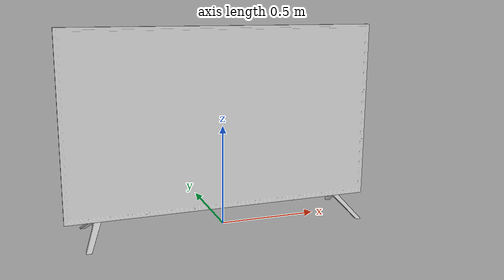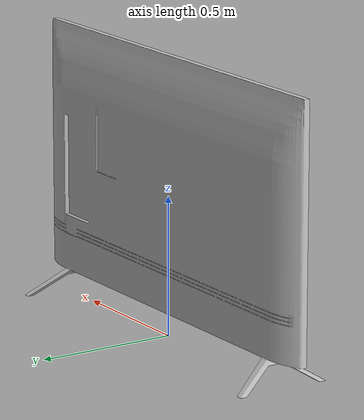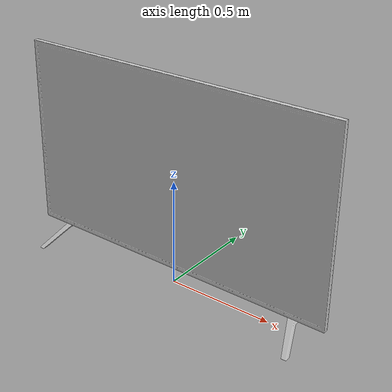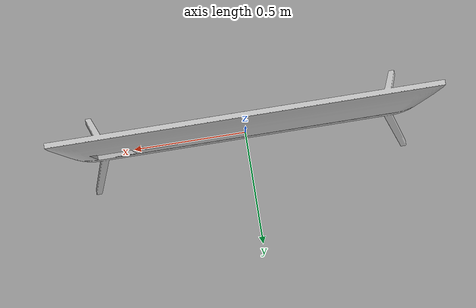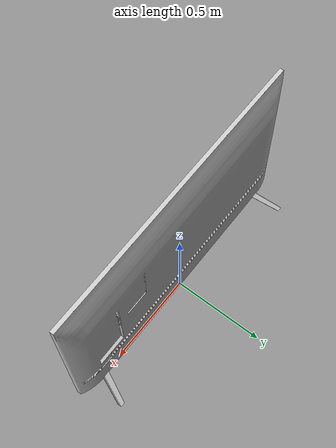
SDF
<?xml version="1.0"?>
<sdf version="1.5">
    <model name="tv">
        <static>true</static>

        <link name="tv">
            <pose>0 0 0 0 0 0</pose>
            <static>true</static>
            <visual name="visual">
                <geometry>
                        <mesh>
                        <uri>model://tv/tv.dae</uri>
                        <scale>1 1 1</scale>
                        </mesh>
                </geometry>
            </visual>
        </link>
    </model>
 </sdf>
